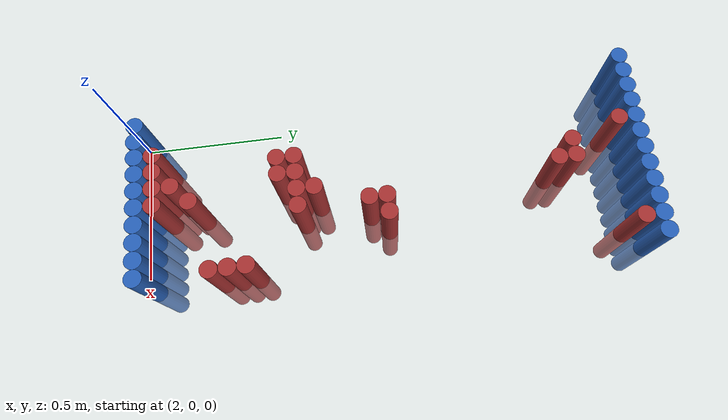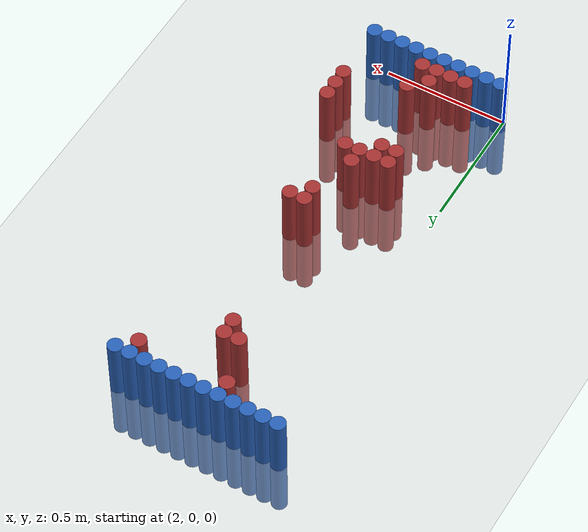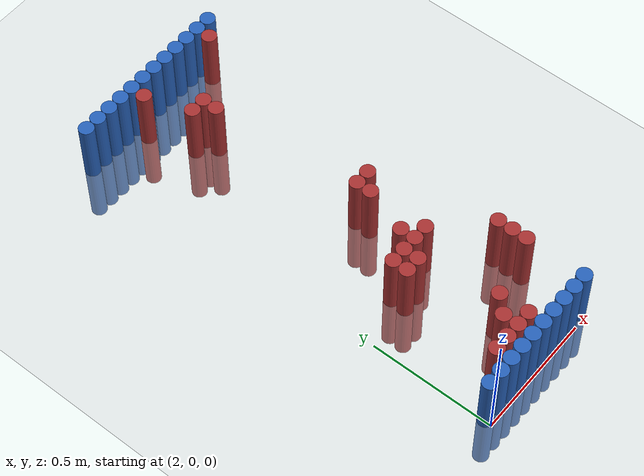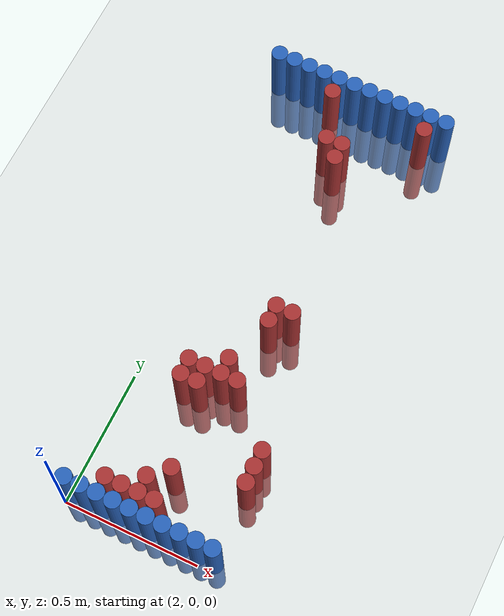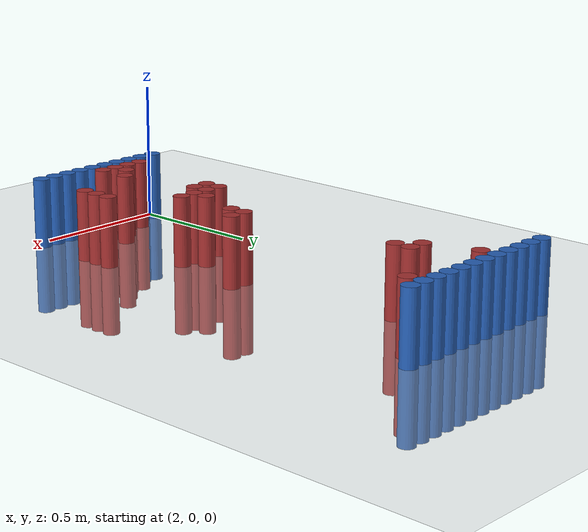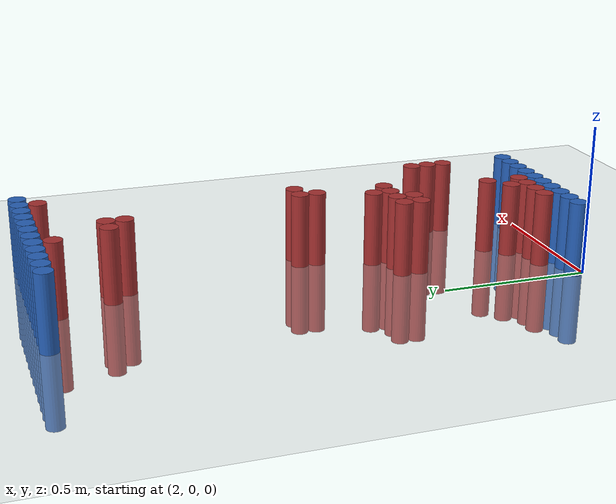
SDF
<sdf version="1.6">
 <world name="default">
  <model name="ground_plane">
   <static>1</static>
   <link name="link">
    <collision name="collision">
     <geometry><plane><normal>0 0 1</normal><size>100 100</size></plane></geometry>
     <surface><friction><ode><mu>100</mu><mu2>50</mu2></ode></friction></surface>
    </collision>
    <visual name="visual">
     <cast_shadows>0</cast_shadows>
     <geometry><plane><normal>0 0 1</normal><size>100 100</size></plane></geometry>
     <material>
      <script><uri>file://media/materials/scripts/gazebo.material</uri><name>Gazebo/Grey</name></script>
     </material>
    </visual>
   </link>
  </model>
  <model name="unit_cylinder_92">
   <static>1</static>
   <pose>1.950000 1.770000 0.000000 0.000000 0.000000 0.000000</pose>
   <link name="link">
    <inertial>
     <mass>1</mass>
     <inertia><ixx>0.145833</ixx><ixy>0</ixy><ixz>0</ixz><iyy>0.145833</iyy><iyz>0</iyz><izz>0.125</izz></inertia>
    </inertial>
    <collision name="collision">
     <geometry><cylinder><radius>0.030000</radius><length>0.5</length></cylinder></geometry>
    </collision>
    <visual name="visual">
     <geometry><cylinder><radius>0.030000</radius><length>0.5</length></cylinder></geometry>
     <material>
      <ambient>0.152000 0.379000 0.720000 1</ambient>
      <diffuse>0.152000 0.379000 0.720000 1</diffuse>
     </material>
     <material>
      <script><name>Gazebo/Grey</name><uri>file://media/materials/scripts/gazebo.material</uri></script>
     </material>
    </visual>
   </link>
  </model>
  <model name="unit_cylinder_93">
   <static>1</static>
   <pose>2.010000 0.030000 0.000000 0.000000 0.000000 0.000000</pose>
   <link name="link">
    <inertial>
     <mass>1</mass>
     <inertia><ixx>0.145833</ixx><ixy>0</ixy><ixz>0</ixz><iyy>0.145833</iyy><iyz>0</iyz><izz>0.125</izz></inertia>
    </inertial>
    <collision name="collision">
     <geometry><cylinder><radius>0.030000</radius><length>0.5</length></cylinder></geometry>
    </collision>
    <visual name="visual">
     <geometry><cylinder><radius>0.030000</radius><length>0.5</length></cylinder></geometry>
     <material>
      <ambient>0.152000 0.379000 0.720000 1</ambient>
      <diffuse>0.152000 0.379000 0.720000 1</diffuse>
     </material>
     <material>
      <script><name>Gazebo/Grey</name><uri>file://media/materials/scripts/gazebo.material</uri></script>
     </material>
    </visual>
   </link>
  </model>
  <model name="unit_cylinder_94">
   <static>1</static>
   <pose>2.010000 1.770000 0.000000 0.000000 0.000000 0.000000</pose>
   <link name="link">
    <inertial>
     <mass>1</mass>
     <inertia><ixx>0.145833</ixx><ixy>0</ixy><ixz>0</ixz><iyy>0.145833</iyy><iyz>0</iyz><izz>0.125</izz></inertia>
    </inertial>
    <collision name="collision">
     <geometry><cylinder><radius>0.030000</radius><length>0.5</length></cylinder></geometry>
    </collision>
    <visual name="visual">
     <geometry><cylinder><radius>0.030000</radius><length>0.5</length></cylinder></geometry>
     <material>
      <ambient>0.152000 0.379000 0.720000 1</ambient>
      <diffuse>0.152000 0.379000 0.720000 1</diffuse>
     </material>
     <material>
      <script><name>Gazebo/Grey</name><uri>file://media/materials/scripts/gazebo.material</uri></script>
     </material>
    </visual>
   </link>
  </model>
  <model name="unit_cylinder_95">
   <static>1</static>
   <pose>2.070000 1.770000 0.000000 0.000000 0.000000 0.000000</pose>
   <link name="link">
    <inertial>
     <mass>1</mass>
     <inertia><ixx>0.145833</ixx><ixy>0</ixy><ixz>0</ixz><iyy>0.145833</iyy><iyz>0</iyz><izz>0.125</izz></inertia>
    </inertial>
    <collision name="collision">
     <geometry><cylinder><radius>0.030000</radius><length>0.5</length></cylinder></geometry>
    </collision>
    <visual name="visual">
     <geometry><cylinder><radius>0.030000</radius><length>0.5</length></cylinder></geometry>
     <material>
      <ambient>0.152000 0.379000 0.720000 1</ambient>
      <diffuse>0.152000 0.379000 0.720000 1</diffuse>
     </material>
     <material>
      <script><name>Gazebo/Grey</name><uri>file://media/materials/scripts/gazebo.material</uri></script>
     </material>
    </visual>
   </link>
  </model>
  <model name="unit_cylinder_96">
   <static>1</static>
   <pose>2.130000 1.770000 0.000000 0.000000 0.000000 0.000000</pose>
   <link name="link">
    <inertial>
     <mass>1</mass>
     <inertia><ixx>0.145833</ixx><ixy>0</ixy><ixz>0</ixz><iyy>0.145833</iyy><iyz>0</iyz><izz>0.125</izz></inertia>
    </inertial>
    <collision name="collision">
     <geometry><cylinder><radius>0.030000</radius><length>0.5</length></cylinder></geometry>
    </collision>
    <visual name="visual">
     <geometry><cylinder><radius>0.030000</radius><length>0.5</length></cylinder></geometry>
     <material>
      <ambient>0.152000 0.379000 0.720000 1</ambient>
      <diffuse>0.152000 0.379000 0.720000 1</diffuse>
     </material>
     <material>
      <script><name>Gazebo/Grey</name><uri>file://media/materials/scripts/gazebo.material</uri></script>
     </material>
    </visual>
   </link>
  </model>
  <model name="unit_cylinder_97">
   <static>1</static>
   <pose>2.190000 1.770000 0.000000 0.000000 0.000000 0.000000</pose>
   <link name="link">
    <inertial>
     <mass>1</mass>
     <inertia><ixx>0.145833</ixx><ixy>0</ixy><ixz>0</ixz><iyy>0.145833</iyy><iyz>0</iyz><izz>0.125</izz></inertia>
    </inertial>
    <collision name="collision">
     <geometry><cylinder><radius>0.030000</radius><length>0.5</length></cylinder></geometry>
    </collision>
    <visual name="visual">
     <geometry><cylinder><radius>0.030000</radius><length>0.5</length></cylinder></geometry>
     <material>
      <ambient>0.152000 0.379000 0.720000 1</ambient>
      <diffuse>0.152000 0.379000 0.720000 1</diffuse>
     </material>
     <material>
      <script><name>Gazebo/Grey</name><uri>file://media/materials/scripts/gazebo.material</uri></script>
     </material>
    </visual>
   </link>
  </model>
  <model name="unit_cylinder_98">
   <static>1</static>
   <pose>2.250000 1.770000 0.000000 0.000000 0.000000 0.000000</pose>
   <link name="link">
    <inertial>
     <mass>1</mass>
     <inertia><ixx>0.145833</ixx><ixy>0</ixy><ixz>0</ixz><iyy>0.145833</iyy><iyz>0</iyz><izz>0.125</izz></inertia>
    </inertial>
    <collision name="collision">
     <geometry><cylinder><radius>0.030000</radius><length>0.5</length></cylinder></geometry>
    </collision>
    <visual name="visual">
     <geometry><cylinder><radius>0.030000</radius><length>0.5</length></cylinder></geometry>
     <material>
      <ambient>0.152000 0.379000 0.720000 1</ambient>
      <diffuse>0.152000 0.379000 0.720000 1</diffuse>
     </material>
     <material>
      <script><name>Gazebo/Grey</name><uri>file://media/materials/scripts/gazebo.material</uri></script>
     </material>
    </visual>
   </link>
  </model>
  <model name="unit_cylinder_99">
   <static>1</static>
   <pose>2.310000 1.770000 0.000000 0.000000 0.000000 0.000000</pose>
   <link name="link">
    <inertial>
     <mass>1</mass>
     <inertia><ixx>0.145833</ixx><ixy>0</ixy><ixz>0</ixz><iyy>0.145833</iyy><iyz>0</iyz><izz>0.125</izz></inertia>
    </inertial>
    <collision name="collision">
     <geometry><cylinder><radius>0.030000</radius><length>0.5</length></cylinder></geometry>
    </collision>
    <visual name="visual">
     <geometry><cylinder><radius>0.030000</radius><length>0.5</length></cylinder></geometry>
     <material>
      <ambient>0.152000 0.379000 0.720000 1</ambient>
      <diffuse>0.152000 0.379000 0.720000 1</diffuse>
     </material>
     <material>
      <script><name>Gazebo/Grey</name><uri>file://media/materials/scripts/gazebo.material</uri></script>
     </material>
    </visual>
   </link>
  </model>
  <model name="unit_cylinder_100">
   <static>1</static>
   <pose>2.370000 1.770000 0.000000 0.000000 0.000000 0.000000</pose>
   <link name="link">
    <inertial>
     <mass>1</mass>
     <inertia><ixx>0.145833</ixx><ixy>0</ixy><ixz>0</ixz><iyy>0.145833</iyy><iyz>0</iyz><izz>0.125</izz></inertia>
    </inertial>
    <collision name="collision">
     <geometry><cylinder><radius>0.030000</radius><length>0.5</length></cylinder></geometry>
    </collision>
    <visual name="visual">
     <geometry><cylinder><radius>0.030000</radius><length>0.5</length></cylinder></geometry>
     <material>
      <ambient>0.152000 0.379000 0.720000 1</ambient>
      <diffuse>0.152000 0.379000 0.720000 1</diffuse>
     </material>
     <material>
      <script><name>Gazebo/Grey</name><uri>file://media/materials/scripts/gazebo.material</uri></script>
     </material>
    </visual>
   </link>
  </model>
  <model name="unit_cylinder_101">
   <static>1</static>
   <pose>2.430000 1.770000 0.000000 0.000000 0.000000 0.000000</pose>
   <link name="link">
    <inertial>
     <mass>1</mass>
     <inertia><ixx>0.145833</ixx><ixy>0</ixy><ixz>0</ixz><iyy>0.145833</iyy><iyz>0</iyz><izz>0.125</izz></inertia>
    </inertial>
    <collision name="collision">
     <geometry><cylinder><radius>0.030000</radius><length>0.5</length></cylinder></geometry>
    </collision>
    <visual name="visual">
     <geometry><cylinder><radius>0.030000</radius><length>0.5</length></cylinder></geometry>
     <material>
      <ambient>0.152000 0.379000 0.720000 1</ambient>
      <diffuse>0.152000 0.379000 0.720000 1</diffuse>
     </material>
     <material>
      <script><name>Gazebo/Grey</name><uri>file://media/materials/scripts/gazebo.material</uri></script>
     </material>
    </visual>
   </link>
  </model>
  <model name="unit_cylinder_102">
   <static>1</static>
   <pose>2.490000 1.770000 0.000000 0.000000 0.000000 0.000000</pose>
   <link name="link">
    <inertial>
     <mass>1</mass>
     <inertia><ixx>0.145833</ixx><ixy>0</ixy><ixz>0</ixz><iyy>0.145833</iyy><iyz>0</iyz><izz>0.125</izz></inertia>
    </inertial>
    <collision name="collision">
     <geometry><cylinder><radius>0.030000</radius><length>0.5</length></cylinder></geometry>
    </collision>
    <visual name="visual">
     <geometry><cylinder><radius>0.030000</radius><length>0.5</length></cylinder></geometry>
     <material>
      <ambient>0.152000 0.379000 0.720000 1</ambient>
      <diffuse>0.152000 0.379000 0.720000 1</diffuse>
     </material>
     <material>
      <script><name>Gazebo/Grey</name><uri>file://media/materials/scripts/gazebo.material</uri></script>
     </material>
    </visual>
   </link>
  </model>
  <model name="unit_cylinder_103">
   <static>1</static>
   <pose>2.550000 1.770000 0.000000 0.000000 0.000000 0.000000</pose>
   <link name="link">
    <inertial>
     <mass>1</mass>
     <inertia><ixx>0.145833</ixx><ixy>0</ixy><ixz>0</ixz><iyy>0.145833</iyy><iyz>0</iyz><izz>0.125</izz></inertia>
    </inertial>
    <collision name="collision">
     <geometry><cylinder><radius>0.030000</radius><length>0.5</length></cylinder></geometry>
    </collision>
    <visual name="visual">
     <geometry><cylinder><radius>0.030000</radius><length>0.5</length></cylinder></geometry>
     <material>
      <ambient>0.152000 0.379000 0.720000 1</ambient>
      <diffuse>0.152000 0.379000 0.720000 1</diffuse>
     </material>
     <material>
      <script><name>Gazebo/Grey</name><uri>file://media/materials/scripts/gazebo.material</uri></script>
     </material>
    </visual>
   </link>
  </model>
  <model name="unit_cylinder_104">
   <static>1</static>
   <pose>2.610000 1.770000 0.000000 0.000000 0.000000 0.000000</pose>
   <link name="link">
    <inertial>
     <mass>1</mass>
     <inertia><ixx>0.145833</ixx><ixy>0</ixy><ixz>0</ixz><iyy>0.145833</iyy><iyz>0</iyz><izz>0.125</izz></inertia>
    </inertial>
    <collision name="collision">
     <geometry><cylinder><radius>0.030000</radius><length>0.5</length></cylinder></geometry>
    </collision>
    <visual name="visual">
     <geometry><cylinder><radius>0.030000</radius><length>0.5</length></cylinder></geometry>
     <material>
      <ambient>0.152000 0.379000 0.720000 1</ambient>
      <diffuse>0.152000 0.379000 0.720000 1</diffuse>
     </material>
     <material>
      <script><name>Gazebo/Grey</name><uri>file://media/materials/scripts/gazebo.material</uri></script>
     </material>
    </visual>
   </link>
  </model>
  <model name="unit_cylinder_125">
   <static>1</static>
   <pose>2.190000 1.710000 0.000000 0.000000 0.000000 0.000000</pose>
   <link name="link">
    <inertial>
     <mass>1</mass>
     <inertia><ixx>0.145833</ixx><ixy>0</ixy><ixz>0</ixz><iyy>0.145833</iyy><iyz>0</iyz><izz>0.125</izz></inertia>
    </inertial>
    <collision name="collision">
     <geometry><cylinder><radius>0.030000</radius><length>0.5</length></cylinder></geometry>
    </collision>
    <visual name="visual">
     <geometry><cylinder><radius>0.030000</radius><length>0.5</length></cylinder></geometry>
     <material>
      <ambient>0.648000 0.192000 0.192000 1</ambient>
      <diffuse>0.648000 0.192000 0.192000 1</diffuse>
     </material>
     <material>
      <script><name>Gazebo/Grey</name><uri>file://media/materials/scripts/gazebo.material</uri></script>
     </material>
    </visual>
   </link>
  </model>
  <model name="unit_cylinder_126">
   <static>1</static>
   <pose>2.550000 1.710000 0.000000 0.000000 0.000000 0.000000</pose>
   <link name="link">
    <inertial>
     <mass>1</mass>
     <inertia><ixx>0.145833</ixx><ixy>0</ixy><ixz>0</ixz><iyy>0.145833</iyy><iyz>0</iyz><izz>0.125</izz></inertia>
    </inertial>
    <collision name="collision">
     <geometry><cylinder><radius>0.030000</radius><length>0.5</length></cylinder></geometry>
    </collision>
    <visual name="visual">
     <geometry><cylinder><radius>0.030000</radius><length>0.5</length></cylinder></geometry>
     <material>
      <ambient>0.648000 0.192000 0.192000 1</ambient>
      <diffuse>0.648000 0.192000 0.192000 1</diffuse>
     </material>
     <material>
      <script><name>Gazebo/Grey</name><uri>file://media/materials/scripts/gazebo.material</uri></script>
     </material>
    </visual>
   </link>
  </model>
  <model name="unit_cylinder_149">
   <static>1</static>
   <pose>2.250000 1.530000 0.000000 0.000000 0.000000 0.000000</pose>
   <link name="link">
    <inertial>
     <mass>1</mass>
     <inertia><ixx>0.145833</ixx><ixy>0</ixy><ixz>0</ixz><iyy>0.145833</iyy><iyz>0</iyz><izz>0.125</izz></inertia>
    </inertial>
    <collision name="collision">
     <geometry><cylinder><radius>0.030000</radius><length>0.5</length></cylinder></geometry>
    </collision>
    <visual name="visual">
     <geometry><cylinder><radius>0.030000</radius><length>0.5</length></cylinder></geometry>
     <material>
      <ambient>0.648000 0.192000 0.192000 1</ambient>
      <diffuse>0.648000 0.192000 0.192000 1</diffuse>
     </material>
     <material>
      <script><name>Gazebo/Grey</name><uri>file://media/materials/scripts/gazebo.material</uri></script>
     </material>
    </visual>
   </link>
  </model>
  <model name="unit_cylinder_150">
   <static>1</static>
   <pose>2.310000 1.530000 0.000000 0.000000 0.000000 0.000000</pose>
   <link name="link">
    <inertial>
     <mass>1</mass>
     <inertia><ixx>0.145833</ixx><ixy>0</ixy><ixz>0</ixz><iyy>0.145833</iyy><iyz>0</iyz><izz>0.125</izz></inertia>
    </inertial>
    <collision name="collision">
     <geometry><cylinder><radius>0.030000</radius><length>0.5</length></cylinder></geometry>
    </collision>
    <visual name="visual">
     <geometry><cylinder><radius>0.030000</radius><length>0.5</length></cylinder></geometry>
     <material>
      <ambient>0.648000 0.192000 0.192000 1</ambient>
      <diffuse>0.648000 0.192000 0.192000 1</diffuse>
     </material>
     <material>
      <script><name>Gazebo/Grey</name><uri>file://media/materials/scripts/gazebo.material</uri></script>
     </material>
    </visual>
   </link>
  </model>
  <model name="unit_cylinder_152">
   <static>1</static>
   <pose>2.310000 1.470000 0.000000 0.000000 0.000000 0.000000</pose>
   <link name="link">
    <inertial>
     <mass>1</mass>
     <inertia><ixx>0.145833</ixx><ixy>0</ixy><ixz>0</ixz><iyy>0.145833</iyy><iyz>0</iyz><izz>0.125</izz></inertia>
    </inertial>
    <collision name="collision">
     <geometry><cylinder><radius>0.030000</radius><length>0.5</length></cylinder></geometry>
    </collision>
    <visual name="visual">
     <geometry><cylinder><radius>0.030000</radius><length>0.5</length></cylinder></geometry>
     <material>
      <ambient>0.648000 0.192000 0.192000 1</ambient>
      <diffuse>0.648000 0.192000 0.192000 1</diffuse>
     </material>
     <material>
      <script><name>Gazebo/Grey</name><uri>file://media/materials/scripts/gazebo.material</uri></script>
     </material>
    </visual>
   </link>
  </model>
  <model name="unit_cylinder_178">
   <static>1</static>
   <pose>2.370000 0.870000 0.000000 0.000000 0.000000 0.000000</pose>
   <link name="link">
    <inertial>
     <mass>1</mass>
     <inertia><ixx>0.145833</ixx><ixy>0</ixy><ixz>0</ixz><iyy>0.145833</iyy><iyz>0</iyz><izz>0.125</izz></inertia>
    </inertial>
    <collision name="collision">
     <geometry><cylinder><radius>0.030000</radius><length>0.5</length></cylinder></geometry>
    </collision>
    <visual name="visual">
     <geometry><cylinder><radius>0.030000</radius><length>0.5</length></cylinder></geometry>
     <material>
      <ambient>0.648000 0.192000 0.192000 1</ambient>
      <diffuse>0.648000 0.192000 0.192000 1</diffuse>
     </material>
     <material>
      <script><name>Gazebo/Grey</name><uri>file://media/materials/scripts/gazebo.material</uri></script>
     </material>
    </visual>
   </link>
  </model>
  <model name="unit_cylinder_179">
   <static>1</static>
   <pose>2.430000 0.870000 0.000000 0.000000 0.000000 0.000000</pose>
   <link name="link">
    <inertial>
     <mass>1</mass>
     <inertia><ixx>0.145833</ixx><ixy>0</ixy><ixz>0</ixz><iyy>0.145833</iyy><iyz>0</iyz><izz>0.125</izz></inertia>
    </inertial>
    <collision name="collision">
     <geometry><cylinder><radius>0.030000</radius><length>0.5</length></cylinder></geometry>
    </collision>
    <visual name="visual">
     <geometry><cylinder><radius>0.030000</radius><length>0.5</length></cylinder></geometry>
     <material>
      <ambient>0.648000 0.192000 0.192000 1</ambient>
      <diffuse>0.648000 0.192000 0.192000 1</diffuse>
     </material>
     <material>
      <script><name>Gazebo/Grey</name><uri>file://media/materials/scripts/gazebo.material</uri></script>
     </material>
    </visual>
   </link>
  </model>
  <model name="unit_cylinder_180">
   <static>1</static>
   <pose>2.370000 0.810000 0.000000 0.000000 0.000000 0.000000</pose>
   <link name="link">
    <inertial>
     <mass>1</mass>
     <inertia><ixx>0.145833</ixx><ixy>0</ixy><ixz>0</ixz><iyy>0.145833</iyy><iyz>0</iyz><izz>0.125</izz></inertia>
    </inertial>
    <collision name="collision">
     <geometry><cylinder><radius>0.030000</radius><length>0.5</length></cylinder></geometry>
    </collision>
    <visual name="visual">
     <geometry><cylinder><radius>0.030000</radius><length>0.5</length></cylinder></geometry>
     <material>
      <ambient>0.648000 0.192000 0.192000 1</ambient>
      <diffuse>0.648000 0.192000 0.192000 1</diffuse>
     </material>
     <material>
      <script><name>Gazebo/Grey</name><uri>file://media/materials/scripts/gazebo.material</uri></script>
     </material>
    </visual>
   </link>
  </model>
  <model name="unit_cylinder_193">
   <static>1</static>
   <pose>2.310000 0.630000 0.000000 0.000000 0.000000 0.000000</pose>
   <link name="link">
    <inertial>
     <mass>1</mass>
     <inertia><ixx>0.145833</ixx><ixy>0</ixy><ixz>0</ixz><iyy>0.145833</iyy><iyz>0</iyz><izz>0.125</izz></inertia>
    </inertial>
    <collision name="collision">
     <geometry><cylinder><radius>0.030000</radius><length>0.5</length></cylinder></geometry>
    </collision>
    <visual name="visual">
     <geometry><cylinder><radius>0.030000</radius><length>0.5</length></cylinder></geometry>
     <material>
      <ambient>0.648000 0.192000 0.192000 1</ambient>
      <diffuse>0.648000 0.192000 0.192000 1</diffuse>
     </material>
     <material>
      <script><name>Gazebo/Grey</name><uri>file://media/materials/scripts/gazebo.material</uri></script>
     </material>
    </visual>
   </link>
  </model>
  <model name="unit_cylinder_197">
   <static>1</static>
   <pose>2.190000 0.570000 0.000000 0.000000 0.000000 0.000000</pose>
   <link name="link">
    <inertial>
     <mass>1</mass>
     <inertia><ixx>0.145833</ixx><ixy>0</ixy><ixz>0</ixz><iyy>0.145833</iyy><iyz>0</iyz><izz>0.125</izz></inertia>
    </inertial>
    <collision name="collision">
     <geometry><cylinder><radius>0.030000</radius><length>0.5</length></cylinder></geometry>
    </collision>
    <visual name="visual">
     <geometry><cylinder><radius>0.030000</radius><length>0.5</length></cylinder></geometry>
     <material>
      <ambient>0.648000 0.192000 0.192000 1</ambient>
      <diffuse>0.648000 0.192000 0.192000 1</diffuse>
     </material>
     <material>
      <script><name>Gazebo/Grey</name><uri>file://media/materials/scripts/gazebo.material</uri></script>
     </material>
    </visual>
   </link>
  </model>
  <model name="unit_cylinder_198">
   <static>1</static>
   <pose>2.250000 0.570000 0.000000 0.000000 0.000000 0.000000</pose>
   <link name="link">
    <inertial>
     <mass>1</mass>
     <inertia><ixx>0.145833</ixx><ixy>0</ixy><ixz>0</ixz><iyy>0.145833</iyy><iyz>0</iyz><izz>0.125</izz></inertia>
    </inertial>
    <collision name="collision">
     <geometry><cylinder><radius>0.030000</radius><length>0.5</length></cylinder></geometry>
    </collision>
    <visual name="visual">
     <geometry><cylinder><radius>0.030000</radius><length>0.5</length></cylinder></geometry>
     <material>
      <ambient>0.648000 0.192000 0.192000 1</ambient>
      <diffuse>0.648000 0.192000 0.192000 1</diffuse>
     </material>
     <material>
      <script><name>Gazebo/Grey</name><uri>file://media/materials/scripts/gazebo.material</uri></script>
     </material>
    </visual>
   </link>
  </model>
  <model name="unit_cylinder_199">
   <static>1</static>
   <pose>2.310000 0.570000 0.000000 0.000000 0.000000 0.000000</pose>
   <link name="link">
    <inertial>
     <mass>1</mass>
     <inertia><ixx>0.145833</ixx><ixy>0</ixy><ixz>0</ixz><iyy>0.145833</iyy><iyz>0</iyz><izz>0.125</izz></inertia>
    </inertial>
    <collision name="collision">
     <geometry><cylinder><radius>0.030000</radius><length>0.5</length></cylinder></geometry>
    </collision>
    <visual name="visual">
     <geometry><cylinder><radius>0.030000</radius><length>0.5</length></cylinder></geometry>
     <material>
      <ambient>0.648000 0.192000 0.192000 1</ambient>
      <diffuse>0.648000 0.192000 0.192000 1</diffuse>
     </material>
     <material>
      <script><name>Gazebo/Grey</name><uri>file://media/materials/scripts/gazebo.material</uri></script>
     </material>
    </visual>
   </link>
  </model>
  <model name="unit_cylinder_200">
   <static>1</static>
   <pose>2.370000 0.570000 0.000000 0.000000 0.000000 0.000000</pose>
   <link name="link">
    <inertial>
     <mass>1</mass>
     <inertia><ixx>0.145833</ixx><ixy>0</ixy><ixz>0</ixz><iyy>0.145833</iyy><iyz>0</iyz><izz>0.125</izz></inertia>
    </inertial>
    <collision name="collision">
     <geometry><cylinder><radius>0.030000</radius><length>0.5</length></cylinder></geometry>
    </collision>
    <visual name="visual">
     <geometry><cylinder><radius>0.030000</radius><length>0.5</length></cylinder></geometry>
     <material>
      <ambient>0.648000 0.192000 0.192000 1</ambient>
      <diffuse>0.648000 0.192000 0.192000 1</diffuse>
     </material>
     <material>
      <script><name>Gazebo/Grey</name><uri>file://media/materials/scripts/gazebo.material</uri></script>
     </material>
    </visual>
   </link>
  </model>
  <model name="unit_cylinder_202">
   <static>1</static>
   <pose>2.190000 0.510000 0.000000 0.000000 0.000000 0.000000</pose>
   <link name="link">
    <inertial>
     <mass>1</mass>
     <inertia><ixx>0.145833</ixx><ixy>0</ixy><ixz>0</ixz><iyy>0.145833</iyy><iyz>0</iyz><izz>0.125</izz></inertia>
    </inertial>
    <collision name="collision">
     <geometry><cylinder><radius>0.030000</radius><length>0.5</length></cylinder></geometry>
    </collision>
    <visual name="visual">
     <geometry><cylinder><radius>0.030000</radius><length>0.5</length></cylinder></geometry>
     <material>
      <ambient>0.648000 0.192000 0.192000 1</ambient>
      <diffuse>0.648000 0.192000 0.192000 1</diffuse>
     </material>
     <material>
      <script><name>Gazebo/Grey</name><uri>file://media/materials/scripts/gazebo.material</uri></script>
     </material>
    </visual>
   </link>
  </model>
  <model name="unit_cylinder_203">
   <static>1</static>
   <pose>2.250000 0.510000 0.000000 0.000000 0.000000 0.000000</pose>
   <link name="link">
    <inertial>
     <mass>1</mass>
     <inertia><ixx>0.145833</ixx><ixy>0</ixy><ixz>0</ixz><iyy>0.145833</iyy><iyz>0</iyz><izz>0.125</izz></inertia>
    </inertial>
    <collision name="collision">
     <geometry><cylinder><radius>0.030000</radius><length>0.5</length></cylinder></geometry>
    </collision>
    <visual name="visual">
     <geometry><cylinder><radius>0.030000</radius><length>0.5</length></cylinder></geometry>
     <material>
      <ambient>0.648000 0.192000 0.192000 1</ambient>
      <diffuse>0.648000 0.192000 0.192000 1</diffuse>
     </material>
     <material>
      <script><name>Gazebo/Grey</name><uri>file://media/materials/scripts/gazebo.material</uri></script>
     </material>
    </visual>
   </link>
  </model>
  <model name="unit_cylinder_207">
   <static>1</static>
   <pose>2.550000 0.390000 0.000000 0.000000 0.000000 0.000000</pose>
   <link name="link">
    <inertial>
     <mass>1</mass>
     <inertia><ixx>0.145833</ixx><ixy>0</ixy><ixz>0</ixz><iyy>0.145833</iyy><iyz>0</iyz><izz>0.125</izz></inertia>
    </inertial>
    <collision name="collision">
     <geometry><cylinder><radius>0.030000</radius><length>0.5</length></cylinder></geometry>
    </collision>
    <visual name="visual">
     <geometry><cylinder><radius>0.030000</radius><length>0.5</length></cylinder></geometry>
     <material>
      <ambient>0.648000 0.192000 0.192000 1</ambient>
      <diffuse>0.648000 0.192000 0.192000 1</diffuse>
     </material>
     <material>
      <script><name>Gazebo/Grey</name><uri>file://media/materials/scripts/gazebo.material</uri></script>
     </material>
    </visual>
   </link>
  </model>
  <model name="unit_cylinder_212">
   <static>1</static>
   <pose>2.550000 0.330000 0.000000 0.000000 0.000000 0.000000</pose>
   <link name="link">
    <inertial>
     <mass>1</mass>
     <inertia><ixx>0.145833</ixx><ixy>0</ixy><ixz>0</ixz><iyy>0.145833</iyy><iyz>0</iyz><izz>0.125</izz></inertia>
    </inertial>
    <collision name="collision">
     <geometry><cylinder><radius>0.030000</radius><length>0.5</length></cylinder></geometry>
    </collision>
    <visual name="visual">
     <geometry><cylinder><radius>0.030000</radius><length>0.5</length></cylinder></geometry>
     <material>
      <ambient>0.648000 0.192000 0.192000 1</ambient>
      <diffuse>0.648000 0.192000 0.192000 1</diffuse>
     </material>
     <material>
      <script><name>Gazebo/Grey</name><uri>file://media/materials/scripts/gazebo.material</uri></script>
     </material>
    </visual>
   </link>
  </model>
  <model name="unit_cylinder_214">
   <static>1</static>
   <pose>2.550000 0.270000 0.000000 0.000000 0.000000 0.000000</pose>
   <link name="link">
    <inertial>
     <mass>1</mass>
     <inertia><ixx>0.145833</ixx><ixy>0</ixy><ixz>0</ixz><iyy>0.145833</iyy><iyz>0</iyz><izz>0.125</izz></inertia>
    </inertial>
    <collision name="collision">
     <geometry><cylinder><radius>0.030000</radius><length>0.5</length></cylinder></geometry>
    </collision>
    <visual name="visual">
     <geometry><cylinder><radius>0.030000</radius><length>0.5</length></cylinder></geometry>
     <material>
      <ambient>0.648000 0.192000 0.192000 1</ambient>
      <diffuse>0.648000 0.192000 0.192000 1</diffuse>
     </material>
     <material>
      <script><name>Gazebo/Grey</name><uri>file://media/materials/scripts/gazebo.material</uri></script>
     </material>
    </visual>
   </link>
  </model>
  <model name="unit_cylinder_219">
   <static>1</static>
   <pose>2.310000 0.210000 0.000000 0.000000 0.000000 0.000000</pose>
   <link name="link">
    <inertial>
     <mass>1</mass>
     <inertia><ixx>0.145833</ixx><ixy>0</ixy><ixz>0</ixz><iyy>0.145833</iyy><iyz>0</iyz><izz>0.125</izz></inertia>
    </inertial>
    <collision name="collision">
     <geometry><cylinder><radius>0.030000</radius><length>0.5</length></cylinder></geometry>
    </collision>
    <visual name="visual">
     <geometry><cylinder><radius>0.030000</radius><length>0.5</length></cylinder></geometry>
     <material>
      <ambient>0.648000 0.192000 0.192000 1</ambient>
      <diffuse>0.648000 0.192000 0.192000 1</diffuse>
     </material>
     <material>
      <script><name>Gazebo/Grey</name><uri>file://media/materials/scripts/gazebo.material</uri></script>
     </material>
    </visual>
   </link>
  </model>
  <model name="unit_cylinder_224">
   <static>1</static>
   <pose>2.250000 0.150000 0.000000 0.000000 0.000000 0.000000</pose>
   <link name="link">
    <inertial>
     <mass>1</mass>
     <inertia><ixx>0.145833</ixx><ixy>0</ixy><ixz>0</ixz><iyy>0.145833</iyy><iyz>0</iyz><izz>0.125</izz></inertia>
    </inertial>
    <collision name="collision">
     <geometry><cylinder><radius>0.030000</radius><length>0.5</length></cylinder></geometry>
    </collision>
    <visual name="visual">
     <geometry><cylinder><radius>0.030000</radius><length>0.5</length></cylinder></geometry>
     <material>
      <ambient>0.648000 0.192000 0.192000 1</ambient>
      <diffuse>0.648000 0.192000 0.192000 1</diffuse>
     </material>
     <material>
      <script><name>Gazebo/Grey</name><uri>file://media/materials/scripts/gazebo.material</uri></script>
     </material>
    </visual>
   </link>
  </model>
  <model name="unit_cylinder_229">
   <static>1</static>
   <pose>2.130000 0.090000 0.000000 0.000000 0.000000 0.000000</pose>
   <link name="link">
    <inertial>
     <mass>1</mass>
     <inertia><ixx>0.145833</ixx><ixy>0</ixy><ixz>0</ixz><iyy>0.145833</iyy><iyz>0</iyz><izz>0.125</izz></inertia>
    </inertial>
    <collision name="collision">
     <geometry><cylinder><radius>0.030000</radius><length>0.5</length></cylinder></geometry>
    </collision>
    <visual name="visual">
     <geometry><cylinder><radius>0.030000</radius><length>0.5</length></cylinder></geometry>
     <material>
      <ambient>0.648000 0.192000 0.192000 1</ambient>
      <diffuse>0.648000 0.192000 0.192000 1</diffuse>
     </material>
     <material>
      <script><name>Gazebo/Grey</name><uri>file://media/materials/scripts/gazebo.material</uri></script>
     </material>
    </visual>
   </link>
  </model>
  <model name="unit_cylinder_230">
   <static>1</static>
   <pose>2.190000 0.090000 0.000000 0.000000 0.000000 0.000000</pose>
   <link name="link">
    <inertial>
     <mass>1</mass>
     <inertia><ixx>0.145833</ixx><ixy>0</ixy><ixz>0</ixz><iyy>0.145833</iyy><iyz>0</iyz><izz>0.125</izz></inertia>
    </inertial>
    <collision name="collision">
     <geometry><cylinder><radius>0.030000</radius><length>0.5</length></cylinder></geometry>
    </collision>
    <visual name="visual">
     <geometry><cylinder><radius>0.030000</radius><length>0.5</length></cylinder></geometry>
     <material>
      <ambient>0.648000 0.192000 0.192000 1</ambient>
      <diffuse>0.648000 0.192000 0.192000 1</diffuse>
     </material>
     <material>
      <script><name>Gazebo/Grey</name><uri>file://media/materials/scripts/gazebo.material</uri></script>
     </material>
    </visual>
   </link>
  </model>
  <model name="unit_cylinder_231">
   <static>1</static>
   <pose>2.250000 0.090000 0.000000 0.000000 0.000000 0.000000</pose>
   <link name="link">
    <inertial>
     <mass>1</mass>
     <inertia><ixx>0.145833</ixx><ixy>0</ixy><ixz>0</ixz><iyy>0.145833</iyy><iyz>0</iyz><izz>0.125</izz></inertia>
    </inertial>
    <collision name="collision">
     <geometry><cylinder><radius>0.030000</radius><length>0.5</length></cylinder></geometry>
    </collision>
    <visual name="visual">
     <geometry><cylinder><radius>0.030000</radius><length>0.5</length></cylinder></geometry>
     <material>
      <ambient>0.648000 0.192000 0.192000 1</ambient>
      <diffuse>0.648000 0.192000 0.192000 1</diffuse>
     </material>
     <material>
      <script><name>Gazebo/Grey</name><uri>file://media/materials/scripts/gazebo.material</uri></script>
     </material>
    </visual>
   </link>
  </model>
  <model name="unit_cylinder_232">
   <static>1</static>
   <pose>2.310000 0.090000 0.000000 0.000000 0.000000 0.000000</pose>
   <link name="link">
    <inertial>
     <mass>1</mass>
     <inertia><ixx>0.145833</ixx><ixy>0</ixy><ixz>0</ixz><iyy>0.145833</iyy><iyz>0</iyz><izz>0.125</izz></inertia>
    </inertial>
    <collision name="collision">
     <geometry><cylinder><radius>0.030000</radius><length>0.5</length></cylinder></geometry>
    </collision>
    <visual name="visual">
     <geometry><cylinder><radius>0.030000</radius><length>0.5</length></cylinder></geometry>
     <material>
      <ambient>0.648000 0.192000 0.192000 1</ambient>
      <diffuse>0.648000 0.192000 0.192000 1</diffuse>
     </material>
     <material>
      <script><name>Gazebo/Grey</name><uri>file://media/materials/scripts/gazebo.material</uri></script>
     </material>
    </visual>
   </link>
  </model>
  <model name="unit_cylinder_246">
   <static>1</static>
   <pose>2.070000 0.030000 0.000000 0.000000 0.000000 0.000000</pose>
   <link name="link">
    <inertial>
     <mass>1</mass>
     <inertia><ixx>0.145833</ixx><ixy>0</ixy><ixz>0</ixz><iyy>0.145833</iyy><iyz>0</iyz><izz>0.125</izz></inertia>
    </inertial>
    <collision name="collision">
     <geometry><cylinder><radius>0.030000</radius><length>0.5</length></cylinder></geometry>
    </collision>
    <visual name="visual">
     <geometry><cylinder><radius>0.030000</radius><length>0.5</length></cylinder></geometry>
     <material>
      <ambient>0.152000 0.379000 0.720000 1</ambient>
      <diffuse>0.152000 0.379000 0.720000 1</diffuse>
     </material>
     <material>
      <script><name>Gazebo/Grey</name><uri>file://media/materials/scripts/gazebo.material</uri></script>
     </material>
    </visual>
   </link>
  </model>
  <model name="unit_cylinder_247">
   <static>1</static>
   <pose>2.130000 0.030000 0.000000 0.000000 0.000000 0.000000</pose>
   <link name="link">
    <inertial>
     <mass>1</mass>
     <inertia><ixx>0.145833</ixx><ixy>0</ixy><ixz>0</ixz><iyy>0.145833</iyy><iyz>0</iyz><izz>0.125</izz></inertia>
    </inertial>
    <collision name="collision">
     <geometry><cylinder><radius>0.030000</radius><length>0.5</length></cylinder></geometry>
    </collision>
    <visual name="visual">
     <geometry><cylinder><radius>0.030000</radius><length>0.5</length></cylinder></geometry>
     <material>
      <ambient>0.152000 0.379000 0.720000 1</ambient>
      <diffuse>0.152000 0.379000 0.720000 1</diffuse>
     </material>
     <material>
      <script><name>Gazebo/Grey</name><uri>file://media/materials/scripts/gazebo.material</uri></script>
     </material>
    </visual>
   </link>
  </model>
  <model name="unit_cylinder_248">
   <static>1</static>
   <pose>2.190000 0.030000 0.000000 0.000000 0.000000 0.000000</pose>
   <link name="link">
    <inertial>
     <mass>1</mass>
     <inertia><ixx>0.145833</ixx><ixy>0</ixy><ixz>0</ixz><iyy>0.145833</iyy><iyz>0</iyz><izz>0.125</izz></inertia>
    </inertial>
    <collision name="collision">
     <geometry><cylinder><radius>0.030000</radius><length>0.5</length></cylinder></geometry>
    </collision>
    <visual name="visual">
     <geometry><cylinder><radius>0.030000</radius><length>0.5</length></cylinder></geometry>
     <material>
      <ambient>0.152000 0.379000 0.720000 1</ambient>
      <diffuse>0.152000 0.379000 0.720000 1</diffuse>
     </material>
     <material>
      <script><name>Gazebo/Grey</name><uri>file://media/materials/scripts/gazebo.material</uri></script>
     </material>
    </visual>
   </link>
  </model>
  <model name="unit_cylinder_249">
   <static>1</static>
   <pose>2.250000 0.030000 0.000000 0.000000 0.000000 0.000000</pose>
   <link name="link">
    <inertial>
     <mass>1</mass>
     <inertia><ixx>0.145833</ixx><ixy>0</ixy><ixz>0</ixz><iyy>0.145833</iyy><iyz>0</iyz><izz>0.125</izz></inertia>
    </inertial>
    <collision name="collision">
     <geometry><cylinder><radius>0.030000</radius><length>0.5</length></cylinder></geometry>
    </collision>
    <visual name="visual">
     <geometry><cylinder><radius>0.030000</radius><length>0.5</length></cylinder></geometry>
     <material>
      <ambient>0.152000 0.379000 0.720000 1</ambient>
      <diffuse>0.152000 0.379000 0.720000 1</diffuse>
     </material>
     <material>
      <script><name>Gazebo/Grey</name><uri>file://media/materials/scripts/gazebo.material</uri></script>
     </material>
    </visual>
   </link>
  </model>
  <model name="unit_cylinder_250">
   <static>1</static>
   <pose>2.310000 0.030000 0.000000 0.000000 0.000000 0.000000</pose>
   <link name="link">
    <inertial>
     <mass>1</mass>
     <inertia><ixx>0.145833</ixx><ixy>0</ixy><ixz>0</ixz><iyy>0.145833</iyy><iyz>0</iyz><izz>0.125</izz></inertia>
    </inertial>
    <collision name="collision">
     <geometry><cylinder><radius>0.030000</radius><length>0.5</length></cylinder></geometry>
    </collision>
    <visual name="visual">
     <geometry><cylinder><radius>0.030000</radius><length>0.5</length></cylinder></geometry>
     <material>
      <ambient>0.152000 0.379000 0.720000 1</ambient>
      <diffuse>0.152000 0.379000 0.720000 1</diffuse>
     </material>
     <material>
      <script><name>Gazebo/Grey</name><uri>file://media/materials/scripts/gazebo.material</uri></script>
     </material>
    </visual>
   </link>
  </model>
  <model name="unit_cylinder_251">
   <static>1</static>
   <pose>2.370000 0.030000 0.000000 0.000000 0.000000 0.000000</pose>
   <link name="link">
    <inertial>
     <mass>1</mass>
     <inertia><ixx>0.145833</ixx><ixy>0</ixy><ixz>0</ixz><iyy>0.145833</iyy><iyz>0</iyz><izz>0.125</izz></inertia>
    </inertial>
    <collision name="collision">
     <geometry><cylinder><radius>0.030000</radius><length>0.5</length></cylinder></geometry>
    </collision>
    <visual name="visual">
     <geometry><cylinder><radius>0.030000</radius><length>0.5</length></cylinder></geometry>
     <material>
      <ambient>0.152000 0.379000 0.720000 1</ambient>
      <diffuse>0.152000 0.379000 0.720000 1</diffuse>
     </material>
     <material>
      <script><name>Gazebo/Grey</name><uri>file://media/materials/scripts/gazebo.material</uri></script>
     </material>
    </visual>
   </link>
  </model>
  <model name="unit_cylinder_252">
   <static>1</static>
   <pose>2.430000 0.030000 0.000000 0.000000 0.000000 0.000000</pose>
   <link name="link">
    <inertial>
     <mass>1</mass>
     <inertia><ixx>0.145833</ixx><ixy>0</ixy><ixz>0</ixz><iyy>0.145833</iyy><iyz>0</iyz><izz>0.125</izz></inertia>
    </inertial>
    <collision name="collision">
     <geometry><cylinder><radius>0.030000</radius><length>0.5</length></cylinder></geometry>
    </collision>
    <visual name="visual">
     <geometry><cylinder><radius>0.030000</radius><length>0.5</length></cylinder></geometry>
     <material>
      <ambient>0.152000 0.379000 0.720000 1</ambient>
      <diffuse>0.152000 0.379000 0.720000 1</diffuse>
     </material>
     <material>
      <script><name>Gazebo/Grey</name><uri>file://media/materials/scripts/gazebo.material</uri></script>
     </material>
    </visual>
   </link>
  </model>
  <model name="unit_cylinder_253">
   <static>1</static>
   <pose>2.490000 0.030000 0.000000 0.000000 0.000000 0.000000</pose>
   <link name="link">
    <inertial>
     <mass>1</mass>
     <inertia><ixx>0.145833</ixx><ixy>0</ixy><ixz>0</ixz><iyy>0.145833</iyy><iyz>0</iyz><izz>0.125</izz></inertia>
    </inertial>
    <collision name="collision">
     <geometry><cylinder><radius>0.030000</radius><length>0.5</length></cylinder></geometry>
    </collision>
    <visual name="visual">
     <geometry><cylinder><radius>0.030000</radius><length>0.5</length></cylinder></geometry>
     <material>
      <ambient>0.152000 0.379000 0.720000 1</ambient>
      <diffuse>0.152000 0.379000 0.720000 1</diffuse>
     </material>
     <material>
      <script><name>Gazebo/Grey</name><uri>file://media/materials/scripts/gazebo.material</uri></script>
     </material>
    </visual>
   </link>
  </model>
  <model name="unit_cylinder_254">
   <static>1</static>
   <pose>2.550000 0.030000 0.000000 0.000000 0.000000 0.000000</pose>
   <link name="link">
    <inertial>
     <mass>1</mass>
     <inertia><ixx>0.145833</ixx><ixy>0</ixy><ixz>0</ixz><iyy>0.145833</iyy><iyz>0</iyz><izz>0.125</izz></inertia>
    </inertial>
    <collision name="collision">
     <geometry><cylinder><radius>0.030000</radius><length>0.5</length></cylinder></geometry>
    </collision>
    <visual name="visual">
     <geometry><cylinder><radius>0.030000</radius><length>0.5</length></cylinder></geometry>
     <material>
      <ambient>0.152000 0.379000 0.720000 1</ambient>
      <diffuse>0.152000 0.379000 0.720000 1</diffuse>
     </material>
     <material>
      <script><name>Gazebo/Grey</name><uri>file://media/materials/scripts/gazebo.material</uri></script>
     </material>
    </visual>
   </link>
  </model>
 </world>
</sdf>
